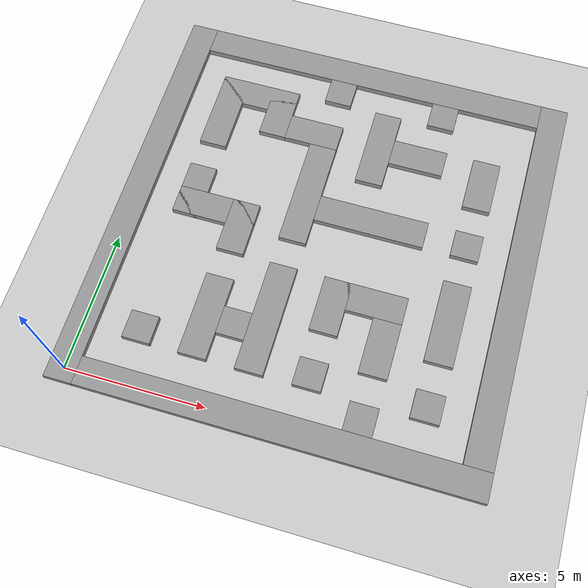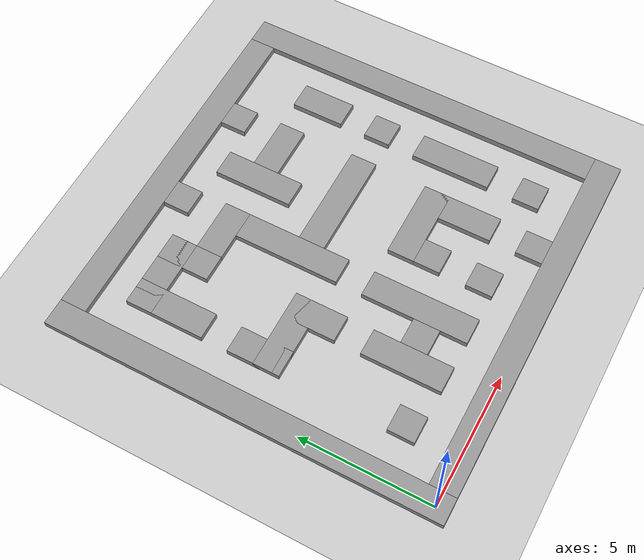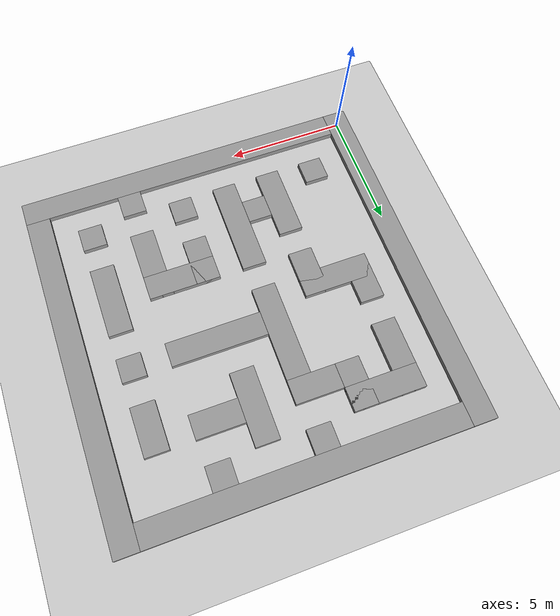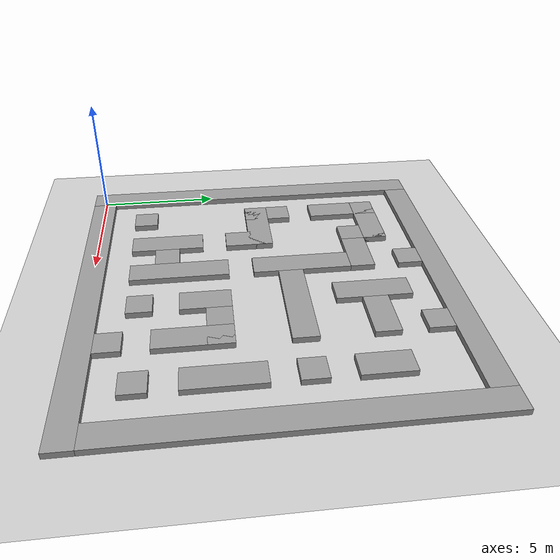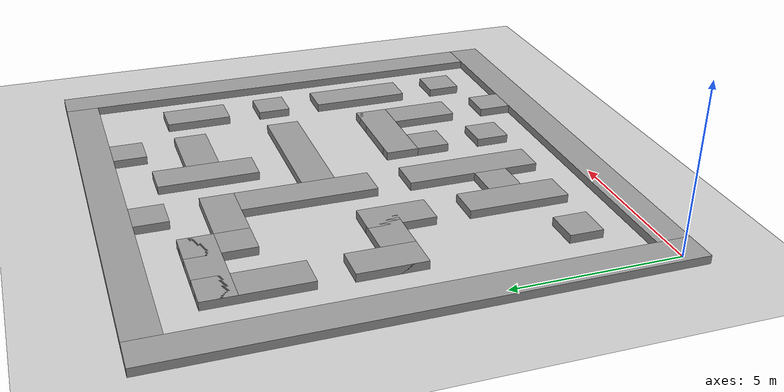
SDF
<sdf version="1.4">
  <world name="default">

    <scene>
      <ambient>0.4 0.4 0.4 1</ambient>
      <background>0.7 0.7 0.7 1</background>
      <shadows>true</shadows>
    </scene>

    <!-- A global light source -->
    <include>
      <uri>model://sun</uri>
    </include>

    <!-- A ground plane -->
    <include>
      <uri>model://ground_plane</uri>
    </include>

	<!-- Maze -->
    <include>
      <uri>model://random_objects</uri>
    </include>

    <physics type="ode">
      <real_time_update_rate>1000.0</real_time_update_rate>
      <max_step_size>0.001</max_step_size>
      <real_time_factor>1</real_time_factor>
      <ode>
        <solver>
          <type>quick</type>
          <iters>150</iters>
          <precon_iters>0</precon_iters>
          <sor>1.400000</sor>
          <use_dynamic_moi_rescaling>1</use_dynamic_moi_rescaling>
        </solver>
        <constraints>
          <cfm>0.00001</cfm>
          <erp>0.2</erp>
          <contact_max_correcting_vel>2000.000000</contact_max_correcting_vel>
          <contact_surface_layer>0.01000</contact_surface_layer>
        </constraints>
      </ode>
    </physics>
  </world>

</sdf>

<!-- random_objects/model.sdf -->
<sdf version='1.7'>
  <model name='random_objects'>
    <pose>7 7 0 0 -0 0</pose>
    <link name='Wall_0'>
      <collision name='Wall_0_Collision'>
        <geometry>
          <box>
            <size>15 1 0.25</size>
          </box>
        </geometry>
        <pose>0 0 0.125 0 -0 0</pose>
      </collision>
      <visual name='Wall_0_Visual'>
        <pose>0 0 0.125 0 -0 0</pose>
        <geometry>
          <box>
            <size>15 1 0.25</size>
          </box>
        </geometry>
        <material>
          <script>
            <uri>file://media/materials/scripts/gazebo.material</uri>
            <name>Gazebo/Grey</name>
          </script>
          <ambient>1 1 1 1</ambient>
        </material>
        <meta>
          <layer>0</layer>
        </meta>
      </visual>
      <pose>-7 0 0 0 -0 1.5708</pose>
    </link>
    <link name='Wall_10'>
      <collision name='Wall_10_Collision'>
        <geometry>
          <box>
            <size>4 1 0.25</size>
          </box>
        </geometry>
        <pose>0 0 0.125 0 -0 0</pose>
      </collision>
      <visual name='Wall_10_Visual'>
        <pose>0 0 0.125 0 -0 0</pose>
        <geometry>
          <box>
            <size>4 1 0.25</size>
          </box>
        </geometry>
        <material>
          <script>
            <uri>file://media/materials/scripts/gazebo.material</uri>
            <name>Gazebo/Grey</name>
          </script>
          <ambient>1 1 1 1</ambient>
        </material>
        <meta>
          <layer>0</layer>
        </meta>
      </visual>
      <pose>-1 -3.5 0 0 -0 1.5708</pose>
    </link>
    <link name='Wall_12'>
      <collision name='Wall_12_Collision'>
        <geometry>
          <box>
            <size>1 1 0.25</size>
          </box>
        </geometry>
        <pose>0 0 0.125 0 -0 0</pose>
      </collision>
      <visual name='Wall_12_Visual'>
        <pose>0 0 0.125 0 -0 0</pose>
        <geometry>
          <box>
            <size>1 1 0.25</size>
          </box>
        </geometry>
        <material>
          <script>
            <uri>file://media/materials/scripts/gazebo.material</uri>
            <name>Gazebo/Grey</name>
          </script>
          <ambient>1 1 1 1</ambient>
        </material>
        <meta>
          <layer>0</layer>
        </meta>
      </visual>
      <pose>-5 -5 0 0 -0 0</pose>
    </link>
    <link name='Wall_14'>
      <collision name='Wall_14_Collision'>
        <geometry>
          <box>
            <size>1 1 0.25</size>
          </box>
        </geometry>
        <pose>0 0 0.125 0 -0 0</pose>
      </collision>
      <visual name='Wall_14_Visual'>
        <pose>0 0 0.125 0 -0 0</pose>
        <geometry>
          <box>
            <size>1 1 0.25</size>
          </box>
        </geometry>
        <material>
          <script>
            <uri>file://media/materials/scripts/gazebo.material</uri>
            <name>Gazebo/Grey</name>
          </script>
          <ambient>1 1 1 1</ambient>
        </material>
        <meta>
          <layer>0</layer>
        </meta>
      </visual>
      <pose>-2 -4 0 0 -0 0</pose>
    </link>
    <link name='Wall_16'>
      <collision name='Wall_16_Collision'>
        <geometry>
          <box>
            <size>3 1 0.25</size>
          </box>
        </geometry>
        <pose>0 0 0.125 0 -0 0</pose>
      </collision>
      <visual name='Wall_16_Visual'>
        <pose>0 0 0.125 0 -0 0</pose>
        <geometry>
          <box>
            <size>3 1 0.25</size>
          </box>
        </geometry>
        <material>
          <script>
            <uri>file://media/materials/scripts/gazebo.material</uri>
            <name>Gazebo/Grey</name>
          </script>
          <ambient>1 1 1 1</ambient>
        </material>
        <meta>
          <layer>0</layer>
        </meta>
      </visual>
      <pose>-4 5 0 0 -0 0</pose>
    </link>
    <link name='Wall_18'>
      <collision name='Wall_18_Collision'>
        <geometry>
          <box>
            <size>2 1 0.25</size>
          </box>
        </geometry>
        <pose>0 0 0.125 0 -0 0</pose>
      </collision>
      <visual name='Wall_18_Visual'>
        <pose>0 0 0.125 0 -0 0</pose>
        <geometry>
          <box>
            <size>2 1 0.25</size>
          </box>
        </geometry>
        <material>
          <script>
            <uri>file://media/materials/scripts/gazebo.material</uri>
            <name>Gazebo/Grey</name>
          </script>
          <ambient>1 1 1 1</ambient>
        </material>
        <meta>
          <layer>0</layer>
        </meta>
      </visual>
      <pose>-5 0.5 0 0 -0 1.5708</pose>
    </link>
    <link name='Wall_2'>
      <collision name='Wall_2_Collision'>
        <geometry>
          <box>
            <size>13 1 0.25</size>
          </box>
        </geometry>
        <pose>0 0 0.125 0 -0 0</pose>
      </collision>
      <visual name='Wall_2_Visual'>
        <pose>0 0 0.125 0 -0 0</pose>
        <geometry>
          <box>
            <size>13 1 0.25</size>
          </box>
        </geometry>
        <material>
          <script>
            <uri>file://media/materials/scripts/gazebo.material</uri>
            <name>Gazebo/Grey</name>
          </script>
          <ambient>1 1 1 1</ambient>
        </material>
        <meta>
          <layer>0</layer>
        </meta>
      </visual>
      <pose>0 7 0 0 -0 0</pose>
    </link>
    <link name='Wall_20'>
      <collision name='Wall_20_Collision'>
        <geometry>
          <box>
            <size>3 1 0.25</size>
          </box>
        </geometry>
        <pose>0 0 0.125 0 -0 0</pose>
      </collision>
      <visual name='Wall_20_Visual'>
        <pose>0 0 0.125 0 -0 0</pose>
        <geometry>
          <box>
            <size>3 1 0.25</size>
          </box>
        </geometry>
        <material>
          <script>
            <uri>file://media/materials/scripts/gazebo.material</uri>
            <name>Gazebo/Grey</name>
          </script>
          <ambient>1 1 1 1</ambient>
        </material>
        <meta>
          <layer>0</layer>
        </meta>
      </visual>
      <pose>-4 0 0 0 -0 3.14159</pose>
    </link>
    <link name='Wall_22'>
      <collision name='Wall_22_Collision'>
        <geometry>
          <box>
            <size>1 1 0.25</size>
          </box>
        </geometry>
        <pose>0 0 0.125 0 -0 0</pose>
      </collision>
      <visual name='Wall_22_Visual'>
        <pose>0 0 0.125 0 -0 0</pose>
        <geometry>
          <box>
            <size>1 1 0.25</size>
          </box>
        </geometry>
        <material>
          <script>
            <uri>file://media/materials/scripts/gazebo.material</uri>
            <name>Gazebo/Grey</name>
          </script>
          <ambient>1 1 1 1</ambient>
        </material>
        <meta>
          <layer>0</layer>
        </meta>
      </visual>
      <pose>3 -6 0 0 -0 0</pose>
    </link>
    <link name='Wall_24'>
      <collision name='Wall_24_Collision'>
        <geometry>
          <box>
            <size>3 1 0.25</size>
          </box>
        </geometry>
        <pose>0 0 0.125 0 -0 0</pose>
      </collision>
      <visual name='Wall_24_Visual'>
        <pose>0 0 0.125 0 -0 0</pose>
        <geometry>
          <box>
            <size>3 1 0.25</size>
          </box>
        </geometry>
        <material>
          <script>
            <uri>file://media/materials/scripts/gazebo.material</uri>
            <name>Gazebo/Grey</name>
          </script>
          <ambient>1 1 1 1</ambient>
        </material>
        <meta>
          <layer>0</layer>
        </meta>
      </visual>
      <pose>2 -2 0 0 -0 0</pose>
    </link>
    <link name='Wall_26'>
      <collision name='Wall_26_Collision'>
        <geometry>
          <box>
            <size>2 1 0.25</size>
          </box>
        </geometry>
        <pose>0 0 0.125 0 -0 0</pose>
      </collision>
      <visual name='Wall_26_Visual'>
        <pose>0 0 0.125 0 -0 0</pose>
        <geometry>
          <box>
            <size>2 1 0.25</size>
          </box>
        </geometry>
        <material>
          <script>
            <uri>file://media/materials/scripts/gazebo.material</uri>
            <name>Gazebo/Grey</name>
          </script>
          <ambient>1 1 1 1</ambient>
        </material>
        <meta>
          <layer>0</layer>
        </meta>
      </visual>
      <pose>1 -2.5 0 0 -0 -1.5708</pose>
    </link>
    <link name='Wall_28'>
      <collision name='Wall_28_Collision'>
        <geometry>
          <box>
            <size>3 1 0.25</size>
          </box>
        </geometry>
        <pose>0 0 0.125 0 -0 0</pose>
      </collision>
      <visual name='Wall_28_Visual'>
        <pose>0 0 0.125 0 -0 0</pose>
        <geometry>
          <box>
            <size>3 1 0.25</size>
          </box>
        </geometry>
        <material>
          <script>
            <uri>file://media/materials/scripts/gazebo.material</uri>
            <name>Gazebo/Grey</name>
          </script>
          <ambient>1 1 1 1</ambient>
        </material>
        <meta>
          <layer>0</layer>
        </meta>
      </visual>
      <pose>3 -3 0 0 -0 -1.5708</pose>
    </link>
    <link name='Wall_30'>
      <collision name='Wall_30_Collision'>
        <geometry>
          <box>
            <size>2 1 0.25</size>
          </box>
        </geometry>
        <pose>0 0 0.125 0 -0 0</pose>
      </collision>
      <visual name='Wall_30_Visual'>
        <pose>0 0 0.125 0 -0 0</pose>
        <geometry>
          <box>
            <size>2 1 0.25</size>
          </box>
        </geometry>
        <material>
          <script>
            <uri>file://media/materials/scripts/gazebo.material</uri>
            <name>Gazebo/Grey</name>
          </script>
          <ambient>1 1 1 1</ambient>
        </material>
        <meta>
          <layer>0</layer>
        </meta>
      </visual>
      <pose>-3 -0.5 0 0 -0 1.5708</pose>
    </link>
    <link name='Wall_32'>
      <collision name='Wall_32_Collision'>
        <geometry>
          <box>
            <size>3 1 0.25</size>
          </box>
        </geometry>
        <pose>0 0 0.125 0 -0 0</pose>
      </collision>
      <visual name='Wall_32_Visual'>
        <pose>0 0 0.125 0 -0 0</pose>
        <geometry>
          <box>
            <size>3 1 0.25</size>
          </box>
        </geometry>
        <material>
          <script>
            <uri>file://media/materials/scripts/gazebo.material</uri>
            <name>Gazebo/Grey</name>
          </script>
          <ambient>1 1 1 1</ambient>
        </material>
        <meta>
          <layer>0</layer>
        </meta>
      </visual>
      <pose>-5 4 0 0 -0 1.5708</pose>
    </link>
    <link name='Wall_34'>
      <collision name='Wall_34_Collision'>
        <geometry>
          <box>
            <size>1 1 0.25</size>
          </box>
        </geometry>
        <pose>0 0 0.125 0 -0 0</pose>
      </collision>
      <visual name='Wall_34_Visual'>
        <pose>0 0 0.125 0 -0 0</pose>
        <geometry>
          <box>
            <size>1 1 0.25</size>
          </box>
        </geometry>
        <material>
          <script>
            <uri>file://media/materials/scripts/gazebo.material</uri>
            <name>Gazebo/Grey</name>
          </script>
          <ambient>1 1 1 1</ambient>
        </material>
        <meta>
          <layer>0</layer>
        </meta>
      </visual>
      <pose>1 -5 0 0 -0 0</pose>
    </link>
    <link name='Wall_36'>
      <collision name='Wall_36_Collision'>
        <geometry>
          <box>
            <size>2 1 0.25</size>
          </box>
        </geometry>
        <pose>0 0 0.125 0 -0 0</pose>
      </collision>
      <visual name='Wall_36_Visual'>
        <pose>0 0 0.125 0 -0 0</pose>
        <geometry>
          <box>
            <size>2 1 0.25</size>
          </box>
        </geometry>
        <material>
          <script>
            <uri>file://media/materials/scripts/gazebo.material</uri>
            <name>Gazebo/Grey</name>
          </script>
          <ambient>1 1 1 1</ambient>
        </material>
        <meta>
          <layer>0</layer>
        </meta>
      </visual>
      <pose>-1.5 4 0 0 -0 0</pose>
    </link>
    <link name='Wall_38'>
      <collision name='Wall_38_Collision'>
        <geometry>
          <box>
            <size>4 1 0.25</size>
          </box>
        </geometry>
        <pose>0 0 0.125 0 -0 0</pose>
      </collision>
      <visual name='Wall_38_Visual'>
        <pose>0 0 0.125 0 -0 0</pose>
        <geometry>
          <box>
            <size>4 1 0.25</size>
          </box>
        </geometry>
        <material>
          <script>
            <uri>file://media/materials/scripts/gazebo.material</uri>
            <name>Gazebo/Grey</name>
          </script>
          <ambient>1 1 1 1</ambient>
        </material>
        <meta>
          <layer>0</layer>
        </meta>
      </visual>
      <pose>-1 1.5 0 0 -0 -1.5708</pose>
    </link>
    <link name='Wall_4'>
      <collision name='Wall_4_Collision'>
        <geometry>
          <box>
            <size>14 1 0.25</size>
          </box>
        </geometry>
        <pose>0 0 0.125 0 -0 0</pose>
      </collision>
      <visual name='Wall_4_Visual'>
        <pose>0 0 0.125 0 -0 0</pose>
        <geometry>
          <box>
            <size>14 1 0.25</size>
          </box>
        </geometry>
        <material>
          <script>
            <uri>file://media/materials/scripts/gazebo.material</uri>
            <name>Gazebo/Grey</name>
          </script>
          <ambient>1 1 1 1</ambient>
        </material>
        <meta>
          <layer>0</layer>
        </meta>
      </visual>
      <pose>7 0.5 0 0 -0 1.5708</pose>
    </link>
    <link name='Wall_40'>
      <collision name='Wall_40_Collision'>
        <geometry>
          <box>
            <size>4 1 0.25</size>
          </box>
        </geometry>
        <pose>0 0 0.125 0 -0 0</pose>
      </collision>
      <visual name='Wall_40_Visual'>
        <pose>0 0 0.125 0 -0 0</pose>
        <geometry>
          <box>
            <size>4 1 0.25</size>
          </box>
        </geometry>
        <material>
          <script>
            <uri>file://media/materials/scripts/gazebo.material</uri>
            <name>Gazebo/Grey</name>
          </script>
          <ambient>1 1 1 1</ambient>
        </material>
        <meta>
          <layer>0</layer>
        </meta>
      </visual>
      <pose>1.5 1 0 0 -0 0</pose>
    </link>
    <link name='Wall_42'>
      <collision name='Wall_42_Collision'>
        <geometry>
          <box>
            <size>2 1 0.25</size>
          </box>
        </geometry>
        <pose>0 0 0.125 0 -0 0</pose>
      </collision>
      <visual name='Wall_42_Visual'>
        <pose>0 0 0.125 0 -0 0</pose>
        <geometry>
          <box>
            <size>2 1 0.25</size>
          </box>
        </geometry>
        <material>
          <script>
            <uri>file://media/materials/scripts/gazebo.material</uri>
            <name>Gazebo/Grey</name>
          </script>
          <ambient>1 1 1 1</ambient>
        </material>
        <meta>
          <layer>0</layer>
        </meta>
      </visual>
      <pose>-3 4.5 0 0 -0 -1.5708</pose>
    </link>
    <link name='Wall_44'>
      <collision name='Wall_44_Collision'>
        <geometry>
          <box>
            <size>3 1 0.25</size>
          </box>
        </geometry>
        <pose>0 0 0.125 0 -0 0</pose>
      </collision>
      <visual name='Wall_44_Visual'>
        <pose>0 0 0.125 0 -0 0</pose>
        <geometry>
          <box>
            <size>3 1 0.25</size>
          </box>
        </geometry>
        <material>
          <script>
            <uri>file://media/materials/scripts/gazebo.material</uri>
            <name>Gazebo/Grey</name>
          </script>
          <ambient>1 1 1 1</ambient>
        </material>
        <meta>
          <layer>0</layer>
        </meta>
      </visual>
      <pose>1 4 0 0 -0 -1.5708</pose>
    </link>
    <link name='Wall_46'>
      <collision name='Wall_46_Collision'>
        <geometry>
          <box>
            <size>1 1 0.25</size>
          </box>
        </geometry>
        <pose>0 0 0.125 0 -0 0</pose>
      </collision>
      <visual name='Wall_46_Visual'>
        <pose>0 0 0.125 0 -0 0</pose>
        <geometry>
          <box>
            <size>1 1 0.25</size>
          </box>
        </geometry>
        <material>
          <script>
            <uri>file://media/materials/scripts/gazebo.material</uri>
            <name>Gazebo/Grey</name>
          </script>
          <ambient>1 1 1 1</ambient>
        </material>
        <meta>
          <layer>0</layer>
        </meta>
      </visual>
      <pose>-1 6 0 0 -0 0</pose>
    </link>
    <link name='Wall_48'>
      <collision name='Wall_48_Collision'>
        <geometry>
          <box>
            <size>1 1 0.25</size>
          </box>
        </geometry>
        <pose>0 0 0.125 0 -0 0</pose>
      </collision>
      <visual name='Wall_48_Visual'>
        <pose>0 0 0.125 0 -0 0</pose>
        <geometry>
          <box>
            <size>1 1 0.25</size>
          </box>
        </geometry>
        <material>
          <script>
            <uri>file://media/materials/scripts/gazebo.material</uri>
            <name>Gazebo/Grey</name>
          </script>
          <ambient>1 1 1 1</ambient>
        </material>
        <meta>
          <layer>0</layer>
        </meta>
      </visual>
      <pose>5 1 0 0 -0 0</pose>
    </link>
    <link name='Wall_50'>
      <collision name='Wall_50_Collision'>
        <geometry>
          <box>
            <size>1 1 0.25</size>
          </box>
        </geometry>
        <pose>0 0 0.125 0 -0 0</pose>
      </collision>
      <visual name='Wall_50_Visual'>
        <pose>0 0 0.125 0 -0 0</pose>
        <geometry>
          <box>
            <size>1 1 0.25</size>
          </box>
        </geometry>
        <material>
          <script>
            <uri>file://media/materials/scripts/gazebo.material</uri>
            <name>Gazebo/Grey</name>
          </script>
          <ambient>1 1 1 1</ambient>
        </material>
        <meta>
          <layer>0</layer>
        </meta>
      </visual>
      <pose>3 6 0 0 -0 0</pose>
    </link>
    <link name='Wall_52'>
      <collision name='Wall_52_Collision'>
        <geometry>
          <box>
            <size>2 1 0.25</size>
          </box>
        </geometry>
        <pose>0 0 0.125 0 -0 0</pose>
      </collision>
      <visual name='Wall_52_Visual'>
        <pose>0 0 0.125 0 -0 0</pose>
        <geometry>
          <box>
            <size>2 1 0.25</size>
          </box>
        </geometry>
        <material>
          <script>
            <uri>file://media/materials/scripts/gazebo.material</uri>
            <name>Gazebo/Grey</name>
          </script>
          <ambient>1 1 1 1</ambient>
        </material>
        <meta>
          <layer>0</layer>
        </meta>
      </visual>
      <pose>2.5 4 0 0 -0 0</pose>
    </link>
    <link name='Wall_54'>
      <collision name='Wall_54_Collision'>
        <geometry>
          <box>
            <size>2 1 0.25</size>
          </box>
        </geometry>
        <pose>0 0 0.125 0 -0 0</pose>
      </collision>
      <visual name='Wall_54_Visual'>
        <pose>0 0 0.125 0 -0 0</pose>
        <geometry>
          <box>
            <size>2 1 0.25</size>
          </box>
        </geometry>
        <material>
          <script>
            <uri>file://media/materials/scripts/gazebo.material</uri>
            <name>Gazebo/Grey</name>
          </script>
          <ambient>1 1 1 1</ambient>
        </material>
        <meta>
          <layer>0</layer>
        </meta>
      </visual>
      <pose>5 3.5 0 0 -0 1.5708</pose>
    </link>
    <link name='Wall_56'>
      <collision name='Wall_56_Collision'>
        <geometry>
          <box>
            <size>3 1 0.25</size>
          </box>
        </geometry>
        <pose>0 0 0.125 0 -0 0</pose>
      </collision>
      <visual name='Wall_56_Visual'>
        <pose>0 0 0.125 0 -0 0</pose>
        <geometry>
          <box>
            <size>3 1 0.25</size>
          </box>
        </geometry>
        <material>
          <script>
            <uri>file://media/materials/scripts/gazebo.material</uri>
            <name>Gazebo/Grey</name>
          </script>
          <ambient>1 1 1 1</ambient>
        </material>
        <meta>
          <layer>0</layer>
        </meta>
      </visual>
      <pose>5 -2 0 0 -0 1.5708</pose>
    </link>
    <link name='Wall_58'>
      <collision name='Wall_58_Collision'>
        <geometry>
          <box>
            <size>1 1 0.25</size>
          </box>
        </geometry>
        <pose>0 0 0.125 0 -0 0</pose>
      </collision>
      <visual name='Wall_58_Visual'>
        <pose>0 0 0.125 0 -0 0</pose>
        <geometry>
          <box>
            <size>1 1 0.25</size>
          </box>
        </geometry>
        <material>
          <script>
            <uri>file://media/materials/scripts/gazebo.material</uri>
            <name>Gazebo/Grey</name>
          </script>
          <ambient>1 1 1 1</ambient>
        </material>
        <meta>
          <layer>0</layer>
        </meta>
      </visual>
      <pose>5 -5 0 0 -0 0</pose>
    </link>
    <link name='Wall_6'>
      <collision name='Wall_6_Collision'>
        <geometry>
          <box>
            <size>14 1 0.25</size>
          </box>
        </geometry>
        <pose>0 0 0.125 0 -0 0</pose>
      </collision>
      <visual name='Wall_6_Visual'>
        <pose>0 0 0.125 0 -0 0</pose>
        <geometry>
          <box>
            <size>14 1 0.25</size>
          </box>
        </geometry>
        <material>
          <script>
            <uri>file://media/materials/scripts/gazebo.material</uri>
            <name>Gazebo/Grey</name>
          </script>
          <ambient>1 1 1 1</ambient>
        </material>
        <meta>
          <layer>0</layer>
        </meta>
      </visual>
      <pose>0.5 -7 0 0 -0 0</pose>
    </link>
    <link name='Wall_8'>
      <collision name='Wall_8_Collision'>
        <geometry>
          <box>
            <size>3 1 0.25</size>
          </box>
        </geometry>
        <pose>0 0 0.125 0 -0 0</pose>
      </collision>
      <visual name='Wall_8_Visual'>
        <pose>0 0 0.125 0 -0 0</pose>
        <geometry>
          <box>
            <size>3 1 0.25</size>
          </box>
        </geometry>
        <material>
          <script>
            <uri>file://media/materials/scripts/gazebo.material</uri>
            <name>Gazebo/Grey</name>
          </script>
          <ambient>1 1 1 1</ambient>
        </material>
        <meta>
          <layer>0</layer>
        </meta>
      </visual>
      <pose>-3 -4 0 0 -0 1.5708</pose>
    </link>
    <static>1</static>
  </model>
</sdf>
